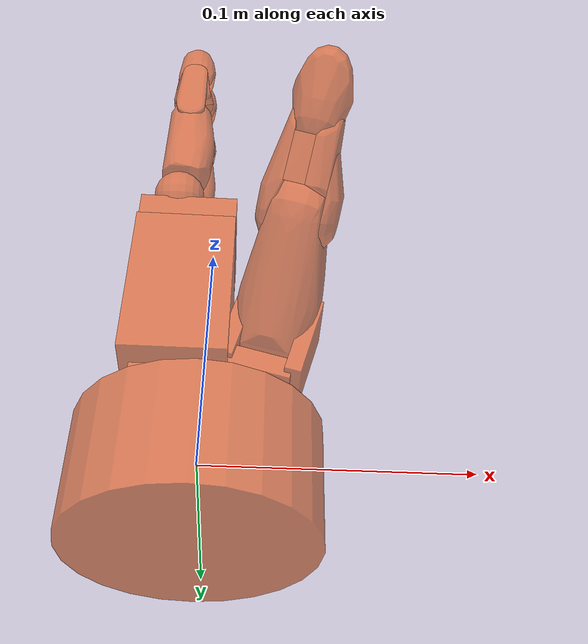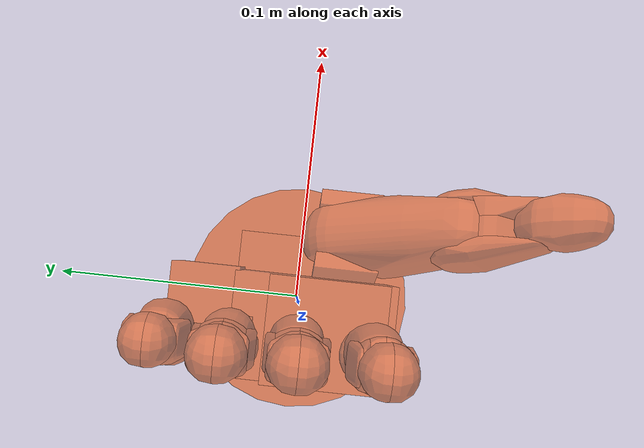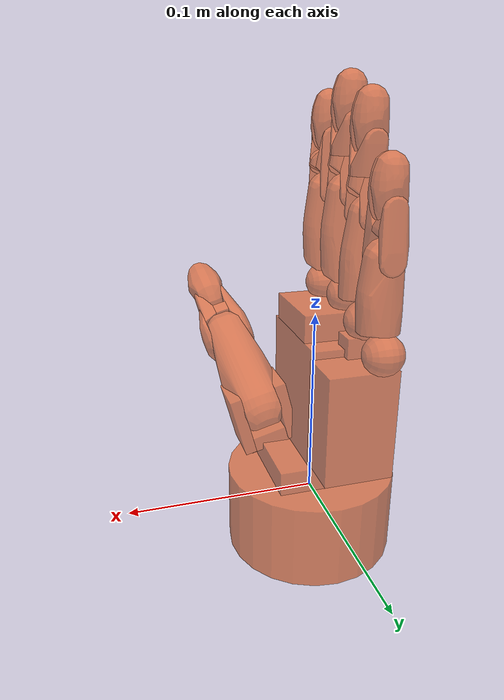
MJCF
<mujoco model="svh">
  <compiler angle="radian" autolimits="true" />
  <option gravity="0 0 0" timestep="0.001" />
  <visual>
    <global offwidth="3840" offheight="2160" />
  </visual>
  <asset>
    <mesh name="d11_left_collision000" content_type="model/obj" file="meshes/collision/d11_left_collision000.obj" />
    <mesh name="d12_left_collision000" content_type="model/obj" file="meshes/collision/d12_left_collision000.obj" />
    <mesh name="d12_left_collision001" content_type="model/obj" file="meshes/collision/d12_left_collision001.obj" />
    <mesh name="d12_left_collision002" content_type="model/obj" file="meshes/collision/d12_left_collision002.obj" />
    <mesh name="d12_left_collision003" content_type="model/obj" file="meshes/collision/d12_left_collision003.obj" />
    <mesh name="d13_left_collision000" content_type="model/obj" file="meshes/collision/d13_left_collision000.obj" />
    <mesh name="f11_collision000" content_type="model/obj" file="meshes/collision/f11_collision000.obj" />
    <mesh name="f12_collision000" content_type="model/obj" file="meshes/collision/f12_collision000.obj" />
    <mesh name="f12_collision001" content_type="model/obj" file="meshes/collision/f12_collision001.obj" />
    <mesh name="f12_collision002" content_type="model/obj" file="meshes/collision/f12_collision002.obj" />
    <mesh name="f12_collision003" content_type="model/obj" file="meshes/collision/f12_collision003.obj" />
    <mesh name="f12_collision004" content_type="model/obj" file="meshes/collision/f12_collision004.obj" />
    <mesh name="f12_collision005" content_type="model/obj" file="meshes/collision/f12_collision005.obj" />
    <mesh name="finger_tip_collision000" content_type="model/obj" file="meshes/collision/finger_tip_collision000.obj" />
    <mesh name="finger_tip_collision001" content_type="model/obj" file="meshes/collision/finger_tip_collision001.obj" />
    <mesh name="f21_collision000" content_type="model/obj" file="meshes/collision/f21_collision000.obj" />
    <mesh name="f22_f32_collision000" content_type="model/obj" file="meshes/collision/f22_f32_collision000.obj" />
    <mesh name="f22_f32_collision001" content_type="model/obj" file="meshes/collision/f22_f32_collision001.obj" />
    <mesh name="f22_f32_collision002" content_type="model/obj" file="meshes/collision/f22_f32_collision002.obj" />
    <mesh name="f22_f32_collision003" content_type="model/obj" file="meshes/collision/f22_f32_collision003.obj" />
    <mesh name="f22_f32_collision004" content_type="model/obj" file="meshes/collision/f22_f32_collision004.obj" />
    <mesh name="f22_f32_collision005" content_type="model/obj" file="meshes/collision/f22_f32_collision005.obj" />
    <mesh name="f31_collision000" content_type="model/obj" file="meshes/collision/f31_collision000.obj" />
    <mesh name="f41_collision000" content_type="model/obj" file="meshes/collision/f41_collision000.obj" />
    <mesh name="f42_collision000" content_type="model/obj" file="meshes/collision/f42_collision000.obj" />
    <mesh name="f42_collision001" content_type="model/obj" file="meshes/collision/f42_collision001.obj" />
    <mesh name="f42_collision002" content_type="model/obj" file="meshes/collision/f42_collision002.obj" />
    <texture type="skybox" builtin="gradient" rgb1="1 1 1" rgb2="1 1 1" width="32" height="512" />
  </asset>
  <worldbody>
    <light pos="0 0 5" dir="0 0 -1" directional="true" />
    <body name="hand_root">
      <body name="left_hand_base_link" quat="0.707109 0 0 -0.707105">
        <inertial pos="0 0 -0.009" quat="0.5 0.5 -0.5 0.5" mass="0.05" diaginertia="6.75e-05 4.21875e-05 4.21875e-05" />
        <geom size="0.045 0.0225" pos="0 0 -0.009" type="cylinder" group="1" rgba="0.9 0.35 0.1 0.65" />
        <body name="left_hand_e1" pos="0 -0.01313 0">
          <inertial pos="0.004965 0.011315 0.05175" quat="0.707107 0 0 0.707107" mass="0.05" diaginertia="5.95994e-05 5.66184e-05 2.69491e-05" />
          <geom size="0.025 0.025 0.013" pos="0 0.01313 0.013" type="box" group="1" rgba="0.9 0.35 0.1 0.65" />
          <geom size="0.0292 0.019 0.03205" pos="0.00573 0.0035 0.05747" type="box" group="1" rgba="0.9 0.35 0.1 0.65" />
          <geom size="0.021 0.019 0.0075" pos="0.01 0.0035 0.096" type="box" group="1" rgba="0.9 0.35 0.1 0.65" />
          <body name="left_hand_z" pos="0.0169 0.02626 0" quat="0.700986 -0.0923056 0.0922868 0.701129">
            <inertial pos="0 0 0.04192" quat="0.707107 0 0 0.707107" mass="0.02604" diaginertia="4.74362e-06 3.90817e-06 3.33529e-06" />
            <joint name="left_hand_Thumb_Opposition" pos="0 0 0" axis="0 0 1" range="0 0.9879" actuatorfrcrange="-1000 1000" damping="0.1" armature="0.0002" frictionloss="0.0" />
            <geom size="0.012 0.0094 0.004" pos="0 0 0.02842" type="box" group="1" rgba="0.9 0.35 0.1 0.65" />
            <geom size="0.003 0.012 0.0165" pos="0.0125 0 0.04292" type="box" group="1" rgba="0.9 0.35 0.1 0.65" />
            <geom size="0.003 0.012 0.0165" pos="-0.0125 0 0.04292" type="box" group="1" rgba="0.9 0.35 0.1 0.65" />
            <body name="left_hand_a" pos="0 0 0.04596" quat="0.329787 -0.625494 0.329779 -0.625494">
              <inertial pos="0 0 0" quat="0 0.707107 0 0.707107" mass="0.05" diaginertia="2.9528e-05 2.8422e-05 8.22154e-06" />
              <joint name="left_hand_Thumb_Flexion" pos="0 0 0" axis="0 0 1" range="-0.9704 0" actuatorfrcrange="-1000 1000" damping="0.1" armature="0.0002" frictionloss="0.0" />
              <geom type="mesh" mesh="d11_left_collision000" group="1" rgba="0.9 0.35 0.1 0.65" />
              <body name="left_hand_b" pos="0.0485 0 0">
                <inertial pos="0 0 0" quat="0 0.707107 0 0.707107" mass="0.00989645" diaginertia="2.41448e-06 1.96387e-06 5.64163e-07" />
                <joint name="left_hand_j3" pos="0 0 0" axis="0 0 1" range="-0.98506 0" actuatorfrcrange="-1000 1000" damping="0.0" armature="0.0" frictionloss="0.0" />
                <geom name="left_hand_b_collision_part000" type="mesh" mesh="d12_left_collision000" group="1" rgba="0.9 0.35 0.1 0.65" />
                <geom name="left_hand_b_collision_part001" type="mesh" mesh="d12_left_collision001" group="1" rgba="0.9 0.35 0.1 0.65" />
                <geom name="left_hand_b_collision_part002" type="mesh" mesh="d12_left_collision002" group="1" rgba="0.9 0.35 0.1 0.65" />
                <geom name="left_hand_b_collision_part003" type="mesh" mesh="d12_left_collision003" group="1" rgba="0.9 0.35 0.1 0.65" />
                <body name="left_hand_c" pos="0.03 0 0">
                  <inertial pos="0.007 0 0" quat="0.5 0.5 0.5 0.5" mass="0.02" diaginertia="2e-05 2e-05 1e-05" />
                  <joint name="left_hand_j4" pos="0 0 0" axis="0 0 1" range="-1.406 0" actuatorfrcrange="-1000 1000" damping="0.0" armature="0.0" frictionloss="0.0" />
                  <geom type="mesh" mesh="d13_left_collision000" group="1" rgba="0.9 0.35 0.1 0.65" />
                  <body name="thtip" pos="0.0275 0 0" />
                </body>
              </body>
            </body>
          </body>
          <body name="left_hand_e2" pos="-0.0184 0.006 0.0375">
            <inertial pos="-0.01275 0 0.02515" mass="0.05" diaginertia="2.36412e-05 2.25671e-05 9.13421e-06" />
            <joint name="left_hand_j5" pos="0 0 0" axis="0 0 1" range="-0.98786 0" actuatorfrcrange="-1000 1000" damping="0.0" armature="0.0" frictionloss="0.0" />
            <geom size="0.0123 0.0175 0.0282" pos="-0.016 0 0.02" type="box" group="1" rgba="0.9 0.35 0.1 0.65" />
            <geom size="0.006 0.009 0.0105" pos="-0.0032 -0.0083 0.048" type="box" group="1" rgba="0.9 0.35 0.1 0.65" />
            <body name="left_hand_virtual_j" pos="-0.003855 -0.006 0.0655" quat="0.500048 -0.5 -0.5 -0.499952">
              <inertial pos="0 0 -0.00321" mass="0.008" diaginertia="5.33333e-07 5.33333e-07 5.33333e-07" />
              <joint name="left_hand_ring_spread" pos="0 0 0" axis="0 0 1" range="-0.28833 0" actuatorfrcrange="-1000 1000" damping="0.0" armature="0.0" frictionloss="0.0" />
              <geom size="0.01" pos="0 0 -0.00321" group="1" rgba="0.9 0.35 0.1 0.65" />
              <body name="left_hand_j" quat="0.707141 0.707073 0 0">
                <inertial pos="0 0 0" quat="0 0.707107 0 0.707107" mass="0.017854" diaginertia="4.02767e-06 3.84988e-06 1.12973e-06" />
                <joint name="left_hand_Ring_Finger" pos="0 0 0" axis="0 0 1" range="0 0.98175" actuatorfrcrange="-1000 1000" damping="0.1" armature="0.0002" frictionloss="0.0" />
                <geom type="mesh" mesh="f31_collision000" group="1" rgba="0.9 0.35 0.1 0.65" />
                <body name="left_hand_n" pos="0.05004 0 0">
                  <inertial pos="0 0 0" quat="0 0.707107 0 0.707107" mass="0.00334494" diaginertia="2.3095e-07 1.71767e-07 9.94768e-08" />
                  <joint name="left_hand_j12" pos="0 0 0" axis="0 0 1" range="0 1.334" actuatorfrcrange="-1000 1000" damping="0.0" armature="0.0" frictionloss="0.0" />
                  <geom name="left_hand_n_collision_part000" type="mesh" mesh="f22_f32_collision000" group="1" rgba="0.9 0.35 0.1 0.65" />
                  <geom name="left_hand_n_collision_part001" type="mesh" mesh="f22_f32_collision001" group="1" rgba="0.9 0.35 0.1 0.65" />
                  <geom name="left_hand_n_collision_part002" type="mesh" mesh="f22_f32_collision002" group="1" rgba="0.9 0.35 0.1 0.65" />
                  <geom name="left_hand_n_collision_part003" type="mesh" mesh="f22_f32_collision003" group="1" rgba="0.9 0.35 0.1 0.65" />
                  <geom name="left_hand_n_collision_part004" type="mesh" mesh="f22_f32_collision004" group="1" rgba="0.9 0.35 0.1 0.65" />
                  <geom name="left_hand_n_collision_part005" type="mesh" mesh="f22_f32_collision005" group="1" rgba="0.9 0.35 0.1 0.65" />
                  <body name="left_hand_r" pos="0.032 0 0">
                    <inertial pos="0.007 0 0" quat="0.5 0.5 0.5 0.5" mass="0.02" diaginertia="2e-05 2e-05 1e-05" />
                    <joint name="left_hand_j16" pos="0 0 0" axis="0 0 1" range="0 1.395" actuatorfrcrange="-1000 1000" damping="0.0" armature="0.0" frictionloss="0.0" />
                    <geom name="left_hand_r_collision_part000" type="mesh" mesh="finger_tip_collision000" group="1" rgba="0.9 0.35 0.1 0.65" />
                    <geom name="left_hand_r_collision_part001" type="mesh" mesh="finger_tip_collision001" group="1" rgba="0.9 0.35 0.1 0.65" />
                    <body name="rftip" pos="0.014 0 0" />
                  </body>
                </body>
              </body>
            </body>
            <body name="left_hand_virtual_i" pos="-0.025355 -0.006 0.056" quat="0.500048 -0.5 -0.5 -0.499952">
              <inertial pos="0 0 -0.00321" mass="0.008" diaginertia="5.33333e-07 5.33333e-07 5.33333e-07" />
              <joint name="left_hand_Finger_Spread" pos="0 0 0" axis="0 0 1" range="-0.5829 0" actuatorfrcrange="-1000 1000" damping="0.1" armature="0.0002" frictionloss="0.0" />
              <geom size="0.01" pos="0 0 -0.00321" group="1" rgba="0.9 0.35 0.1 0.65" />
              <body name="left_hand_i" quat="0.707141 0.707073 0 0">
                <inertial pos="0 0 0" quat="0 0.707107 0 0.707107" mass="0.0155479" diaginertia="2.8156e-06 2.67932e-06 9.74187e-07" />
                <joint name="left_hand_Pinky" pos="0 0 0" axis="0 0 1" range="0 0.98175" actuatorfrcrange="-1000 1000" damping="0.1" armature="0.0002" frictionloss="0.0" />
                <geom type="mesh" mesh="f41_collision000" group="1" rgba="0.9 0.35 0.1 0.65" />
                <body name="left_hand_m" pos="0.04454 0 0">
                  <inertial pos="0.007 0 0" quat="0.5 0.5 0.5 0.5" mass="0.02" diaginertia="2e-06 2e-06 8e-07" />
                  <joint name="left_hand_j13" pos="0 0 0" axis="0 0 1" range="0 1.334" actuatorfrcrange="-1000 1000" damping="0.0" armature="0.0" frictionloss="0.0" />
                  <geom name="left_hand_m_collision_part000" type="mesh" mesh="f42_collision000" group="1" rgba="0.9 0.35 0.1 0.65" />
                  <geom name="left_hand_m_collision_part001" type="mesh" mesh="f42_collision001" group="1" rgba="0.9 0.35 0.1 0.65" />
                  <geom name="left_hand_m_collision_part002" type="mesh" mesh="f42_collision002" group="1" rgba="0.9 0.35 0.1 0.65" />
                  <body name="left_hand_q" pos="0.022 0 0">
                    <inertial pos="0.007 0 0" quat="0.5 0.5 0.5 0.5" mass="0.02" diaginertia="2e-05 2e-05 1e-05" />
                    <joint name="left_hand_j17" pos="0 0 0" axis="0 0 1" range="0 1.3971" actuatorfrcrange="-1000 1000" damping="0.0" armature="0.0" frictionloss="0.0" />
                    <geom name="left_hand_q_collision_part000" type="mesh" mesh="finger_tip_collision000" group="1" rgba="0.9 0.35 0.1 0.65" />
                    <geom name="left_hand_q_collision_part001" type="mesh" mesh="finger_tip_collision001" group="1" rgba="0.9 0.35 0.1 0.65" />
                    <body name="lftip" pos="0.014 0 0" />
                  </body>
                </body>
              </body>
            </body>
          </body>
          <body name="left_hand_virtual_l" pos="0.025 0 0.11" quat="0.500048 0.499952 -0.5 0.5">
            <inertial pos="0 0 0.00121" mass="0.008" diaginertia="5.33333e-07 5.33333e-07 5.33333e-07" />
            <joint name="left_hand_index_spread" pos="0 0 0" axis="0 0 1" range="-0.28833 0" actuatorfrcrange="-1000 1000" damping="0.0" armature="0.0" frictionloss="0.0" />
            <geom size="0.01" pos="0 0 0.00121" group="1" rgba="0.9 0.35 0.1 0.65" />
            <body name="left_hand_l" quat="0.707141 -0.707073 0 0">
              <inertial pos="0 0 0" quat="0 0.707107 0 0.707107" mass="0.0182123" diaginertia="4.23257e-06 4.06612e-06 1.15133e-06" />
              <joint name="left_hand_Index_Finger_Proximal" pos="0 0 0" axis="0 0 1" range="0 0.79849" actuatorfrcrange="-1000 1000" damping="0.1" armature="0.0002" frictionloss="0.0" />
              <geom type="mesh" mesh="f11_collision000" group="1" rgba="0.9 0.35 0.1 0.65" />
              <body name="left_hand_p" pos="0.04804 0 0">
                <inertial pos="0.01 0 0" quat="0.5 0.5 0.5 0.5" mass="0.024" diaginertia="1.96667e-06 1.96667e-06 1.96667e-06" />
                <joint name="left_hand_Index_Finger_Distal" pos="0 0 0" axis="0 0 1" range="0 1.334" actuatorfrcrange="-1000 1000" damping="0.1" armature="0.0002" frictionloss="0.0" />
                <geom name="left_hand_p_collision_part000" type="mesh" mesh="f12_collision000" group="1" rgba="0.9 0.35 0.1 0.65" />
                <geom name="left_hand_p_collision_part001" type="mesh" mesh="f12_collision001" group="1" rgba="0.9 0.35 0.1 0.65" />
                <geom name="left_hand_p_collision_part002" type="mesh" mesh="f12_collision002" group="1" rgba="0.9 0.35 0.1 0.65" />
                <geom name="left_hand_p_collision_part003" type="mesh" mesh="f12_collision003" group="1" rgba="0.9 0.35 0.1 0.65" />
                <geom name="left_hand_p_collision_part004" type="mesh" mesh="f12_collision004" group="1" rgba="0.9 0.35 0.1 0.65" />
                <geom name="left_hand_p_collision_part005" type="mesh" mesh="f12_collision005" group="1" rgba="0.9 0.35 0.1 0.65" />
                <body name="left_hand_t" pos="0.026 0 0">
                  <inertial pos="0.007 0 0" quat="0.5 0.5 0.5 0.5" mass="0.02" diaginertia="2e-05 2e-05 1e-05" />
                  <joint name="left_hand_j14" pos="0 0 0" axis="0 0 1" range="0 1.394" actuatorfrcrange="-1000 1000" damping="0.0" armature="0.0" frictionloss="0.0" />
                  <geom name="left_hand_t_collision_part000" type="mesh" mesh="finger_tip_collision000" group="1" rgba="0.9 0.35 0.1 0.65" />
                  <geom name="left_hand_t_collision_part001" type="mesh" mesh="finger_tip_collision001" group="1" rgba="0.9 0.35 0.1 0.65" />
                  <body name="fftip" pos="0.014 0 0" />
                </body>
              </body>
            </body>
          </body>
          <body name="left_hand_virtual_k" pos="0 0 0.11" quat="0.500048 0.499952 -0.5 0.5">
            <inertial pos="0 0 0.00321" mass="0.008" diaginertia="5.33333e-07 5.33333e-07 5.33333e-07" />
            <geom size="0.01" pos="0 0 0.00321" group="1" rgba="0.9 0.35 0.1 0.65" />
            <body name="left_hand_k" quat="0.707141 -0.707073 0 0">
              <inertial pos="0 0 0" quat="0 0.707107 0 0.707107" mass="0.0189479" diaginertia="4.71858e-06 4.54527e-06 1.1965e-06" />
              <joint name="left_hand_Middle_Finger_Proximal" pos="0 0 0" axis="0 0 1" range="0 0.79849" actuatorfrcrange="-1000 1000" damping="0.1" armature="0.0002" frictionloss="0.0" />
              <geom type="mesh" mesh="f21_collision000" group="1" rgba="0.9 0.35 0.1 0.65" />
              <body name="left_hand_o" pos="0.05004 0 0">
                <inertial pos="0 0 0" quat="0 0.707107 0 0.707107" mass="0.00334494" diaginertia="2.3095e-07 1.71767e-07 9.94768e-08" />
                <joint name="left_hand_Middle_Finger_Distal" pos="0 0 0" axis="0 0 1" range="0 1.334" actuatorfrcrange="-1000 1000" damping="0.1" armature="0.0002" frictionloss="0.0" />
                <geom name="left_hand_o_collision_part000" type="mesh" mesh="f22_f32_collision000" group="1" rgba="0.9 0.35 0.1 0.65" />
                <geom name="left_hand_o_collision_part001" type="mesh" mesh="f22_f32_collision001" group="1" rgba="0.9 0.35 0.1 0.65" />
                <geom name="left_hand_o_collision_part002" type="mesh" mesh="f22_f32_collision002" group="1" rgba="0.9 0.35 0.1 0.65" />
                <geom name="left_hand_o_collision_part003" type="mesh" mesh="f22_f32_collision003" group="1" rgba="0.9 0.35 0.1 0.65" />
                <geom name="left_hand_o_collision_part004" type="mesh" mesh="f22_f32_collision004" group="1" rgba="0.9 0.35 0.1 0.65" />
                <geom name="left_hand_o_collision_part005" type="mesh" mesh="f22_f32_collision005" group="1" rgba="0.9 0.35 0.1 0.65" />
                <body name="left_hand_s" pos="0.032 0 0">
                  <inertial pos="0.007 0 0" quat="0.5 0.5 0.5 0.5" mass="0.02" diaginertia="2e-05 2e-05 1e-05" />
                  <joint name="left_hand_j15" pos="0 0 0" axis="0 0 1" range="0 1.334" actuatorfrcrange="-1000 1000" damping="0.0" armature="0.0" frictionloss="0.0" />
                  <geom name="left_hand_s_collision_part000" type="mesh" mesh="finger_tip_collision000" group="1" rgba="0.9 0.35 0.1 0.65" />
                  <geom name="left_hand_s_collision_part001" type="mesh" mesh="finger_tip_collision001" group="1" rgba="0.9 0.35 0.1 0.65" />
                  <body name="mftip" pos="0.014 0 0" />
                </body>
              </body>
            </body>
          </body>
        </body>
      </body>
    </body>
  </worldbody>
  <contact>
    <exclude name="ex_left_hand_base_link_left_hand_e1" body1="left_hand_base_link" body2="left_hand_e1" />
    <exclude name="ex_left_hand_e1_left_hand_z" body1="left_hand_e1" body2="left_hand_z" />
    <exclude name="ex_left_hand_z_left_hand_a" body1="left_hand_z" body2="left_hand_a" />
    <exclude name="ex_left_hand_a_left_hand_b" body1="left_hand_a" body2="left_hand_b" />
    <exclude name="ex_left_hand_b_left_hand_c" body1="left_hand_b" body2="left_hand_c" />
    <exclude name="ex_left_hand_c_thtip" body1="left_hand_c" body2="thtip" />
    <exclude name="ex_left_hand_e1_left_hand_e2" body1="left_hand_e1" body2="left_hand_e2" />
    <exclude name="ex_left_hand_e2_left_hand_virtual_j" body1="left_hand_e2" body2="left_hand_virtual_j" />
    <exclude name="ex_left_hand_virtual_j_left_hand_j" body1="left_hand_virtual_j" body2="left_hand_j" />
    <exclude name="ex_left_hand_j_left_hand_n" body1="left_hand_j" body2="left_hand_n" />
    <exclude name="ex_left_hand_n_left_hand_r" body1="left_hand_n" body2="left_hand_r" />
    <exclude name="ex_left_hand_r_rftip" body1="left_hand_r" body2="rftip" />
    <exclude name="ex_left_hand_e2_left_hand_virtual_i" body1="left_hand_e2" body2="left_hand_virtual_i" />
    <exclude name="ex_left_hand_virtual_i_left_hand_i" body1="left_hand_virtual_i" body2="left_hand_i" />
    <exclude name="ex_left_hand_i_left_hand_m" body1="left_hand_i" body2="left_hand_m" />
    <exclude name="ex_left_hand_m_left_hand_q" body1="left_hand_m" body2="left_hand_q" />
    <exclude name="ex_left_hand_q_lftip" body1="left_hand_q" body2="lftip" />
    <exclude name="ex_left_hand_e1_left_hand_virtual_l" body1="left_hand_e1" body2="left_hand_virtual_l" />
    <exclude name="ex_left_hand_virtual_l_left_hand_l" body1="left_hand_virtual_l" body2="left_hand_l" />
    <exclude name="ex_left_hand_l_left_hand_p" body1="left_hand_l" body2="left_hand_p" />
    <exclude name="ex_left_hand_p_left_hand_t" body1="left_hand_p" body2="left_hand_t" />
    <exclude name="ex_left_hand_t_fftip" body1="left_hand_t" body2="fftip" />
    <exclude name="ex_left_hand_e1_left_hand_virtual_k" body1="left_hand_e1" body2="left_hand_virtual_k" />
    <exclude name="ex_left_hand_virtual_k_left_hand_k" body1="left_hand_virtual_k" body2="left_hand_k" />
    <exclude name="ex_left_hand_k_left_hand_o" body1="left_hand_k" body2="left_hand_o" />
    <exclude name="ex_left_hand_o_left_hand_s" body1="left_hand_o" body2="left_hand_s" />
    <exclude name="ex_left_hand_s_mftip" body1="left_hand_s" body2="mftip" />
  </contact>
  <equality>
    <joint name="left_hand_j5_mimic" joint1="left_hand_j5" joint2="left_hand_Thumb_Opposition" polycoef="0 1 0 0 0" solref="0.002 1" solimp="0.9 0.99 0.001" />
    <joint name="left_hand_j3_mimic" joint1="left_hand_j3" joint2="left_hand_Thumb_Flexion" polycoef="0 1.01511 0 0 0" solref="0.002 1" solimp="0.9 0.99 0.001" />
    <joint name="left_hand_j4_mimic" joint1="left_hand_j4" joint2="left_hand_Thumb_Flexion" polycoef="0 1.44889 0 0 0" solref="0.002 1" solimp="0.9 0.99 0.001" />
    <joint name="left_hand_j14_mimic" joint1="left_hand_j14" joint2="left_hand_Index_Finger_Distal" polycoef="0 1.0450 0 0 0" solref="0.002 1" solimp="0.9 0.99 0.001" />
    <joint name="left_hand_j15_mimic" joint1="left_hand_j15" joint2="left_hand_Middle_Finger_Distal" polycoef="0 1.0454 0 0 0" solref="0.002 1" solimp="0.9 0.99 0.001" />
    <joint name="left_hand_j12_mimic" joint1="left_hand_j12" joint2="left_hand_Ring_Finger" polycoef="0 1.3588 0 0 0" solref="0.002 1" solimp="0.9 0.99 0.001" />
    <joint name="left_hand_j16_mimic" joint1="left_hand_j16" joint2="left_hand_Ring_Finger" polycoef="0 1.42093 0 0 0" solref="0.002 1" solimp="0.9 0.99 0.001" />
    <joint name="left_hand_j13_mimic" joint1="left_hand_j13" joint2="left_hand_Pinky" polycoef="0 1.35880 0 0 0" solref="0.002 1" solimp="0.9 0.99 0.001" />
    <joint name="left_hand_j17_mimic" joint1="left_hand_j17" joint2="left_hand_Pinky" polycoef="0 1.42307 0 0 0" solref="0.002 1" solimp="0.9 0.99 0.001" />
    <joint name="left_hand_index_spread_mimic" joint1="left_hand_index_spread" joint2="left_hand_Finger_Spread" polycoef="0 0.5 0 0 0" solref="0.002 1" solimp="0.9 0.99 0.001" />
    <joint name="left_hand_ring_spread_mimic" joint1="left_hand_ring_spread" joint2="left_hand_Finger_Spread" polycoef="0 0.5 0 0 0" solref="0.002 1" solimp="0.9 0.99 0.001" />
  </equality>
  <actuator>
    <position name="left_hand_Thumb_Flexion_actuator" joint="left_hand_Thumb_Flexion" kp="1" forcerange="-1 1" ctrlrange="-0.9704 0.0" />
    <position name="left_hand_Thumb_Opposition_actuator" joint="left_hand_Thumb_Opposition" kp="1" forcerange="-1 1" ctrlrange="0.0 0.9879" />
    <position name="left_hand_Index_Finger_Distal_actuator" joint="left_hand_Index_Finger_Distal" kp="1" forcerange="-1 1" ctrlrange="0 1.334" />
    <position name="left_hand_Index_Finger_Proximal_actuator" joint="left_hand_Index_Finger_Proximal" kp="1" forcerange="-1 1" ctrlrange="0.0 0.79849" />
    <position name="left_hand_Middle_Finger_Proximal_actuator" joint="left_hand_Middle_Finger_Proximal" kp="1" forcerange="-1 1" ctrlrange="0.0 0.79849" />
    <position name="left_hand_Middle_Finger_Distal_actuator" joint="left_hand_Middle_Finger_Distal" kp="1" forcerange="-1 1" ctrlrange="0 1.334" />
    <position name="left_hand_Ring_Finger_actuator" joint="left_hand_Ring_Finger" kp="1" forcerange="-1 1" ctrlrange="0.0 0.98175" />
    <position name="left_hand_Pinky_actuator" joint="left_hand_Pinky" kp="1" forcerange="-1 1" ctrlrange="0.0 0.98175" />
    <position name="left_hand_Finger_Spread_actuator" joint="left_hand_Finger_Spread" kp="1" forcerange="-1 1" ctrlrange="-0.5829 0.0" />
  </actuator>
</mujoco>
